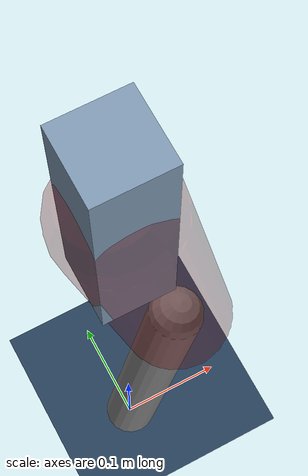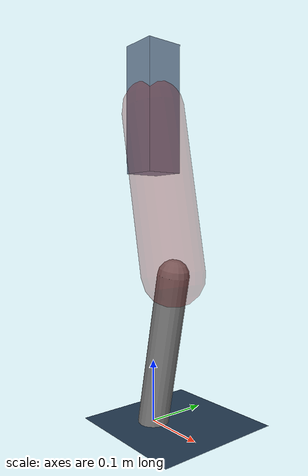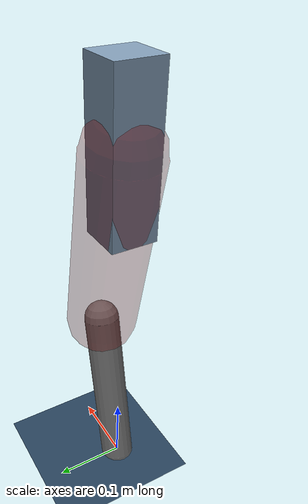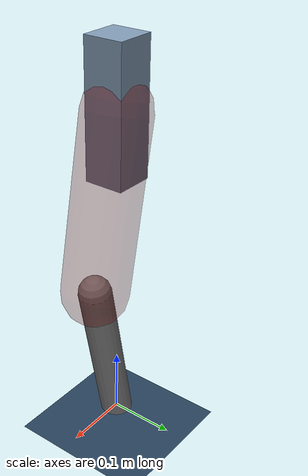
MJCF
<mujoco model="Hopper2D">
	<compiler inertiafromgeom="true" angle="radian" />
	<option timestep="0.001" integrator="implicit" cone="elliptic" solver="Newton" tolerance="1e-10" />

	<default>
		<geom contype="1" conaffinity="1" condim="3" friction="2 0.005 0.0001" solref="0.005 1" />
		<joint limited="true" damping="0.1" />
	</default>

	<asset>
		<texture name="skybox" type="skybox" builtin="gradient" rgb1=".4 .6 .8" rgb2="0 0 0" width="800" height="800" />
		<texture name="grid" type="2d" builtin="checker" rgb1=".1 .2 .3" rgb2=".2 .3 .4" width="300" height="300" mark="edge" markrgb=".2 .3 .4" />
		<material name="ground" texture="grid" texrepeat="1 1" texuniform="true" reflectance="0.1" />
		<material name="leg" rgba="0.5 0.6 0.7 1" />
	</asset>

	<worldbody>

		<geom name="floor" type="plane" size="5 5 0.25" material="ground" />

		<light directional="false" diffuse="0.8 0.8 0.8" specular="0.3 0.3 0.3" pos="0 0 2" dir="0 0 -1" />
		<light mode="targetbodycom" target="base" directional="false" diffuse="0.8 0.8 0.8" specular="0.3 0.3 0.3" pos="0 0 2" dir="0 0 -1" />

		<camera name="fixed" pos="0 -2 1" xyaxes="1 0 0 0 0 1" />
		<camera name="tracking" mode="trackcom" pos="0 -3 1" />

		<body name="root" pos="0 0 0.5030104869482186">
			<joint name="slide_x" type="slide" axis="1 0 0" range="-100 100" />
			<joint name="slide_z" type="slide" axis="0 0 1" range="0 10" />

			<body name="base" pos="0 0 0">
				<geom name="torso" type="box" size="0.03 0.03 0.1" mass="3.027" material="leg" />

				<body name="link1" pos="0 0 0" euler="0 1.37862562553552 0">
					<joint type="hinge" axis="0 -1 0" pos="0 0 0" name="hinge1" limited="true" range="-3.14 3.14" stiffness="0" damping="0.1" />
					<geom name="thigh" type="capsule" fromto="0 0 0 0.2637722781013874 0 0" size="0.05" rgba="0.5 0 0 0.3" mass="0.8923079230636073" />

					<body name="link2" pos="0.2637722781013874 0 0" euler="0 0.39570045147716987 0">
						<joint type="hinge" axis="0 -1 0" pos="0 0 0" name="hinge2" limited="true" range="-3.14 3.14" stiffness="0" damping="0.1" />
						<geom name="shank" type="capsule" fromto="0 0 0 0.24923820884683118 0 0" size="0.025" mass="0.44189056707746494" />

					</body>
				</body>
			</body>
		</body>
	</worldbody>

	<actuator>
		<motor name="torque1" joint="hinge1" ctrlrange="-113.1036822863171 113.1036822863171" ctrllimited="true" gear="1" />
		<motor name="torque2" joint="hinge2" ctrlrange="-89.87000139917903 89.87000139917903" ctrllimited="true" gear="1" />
	</actuator>
</mujoco>
